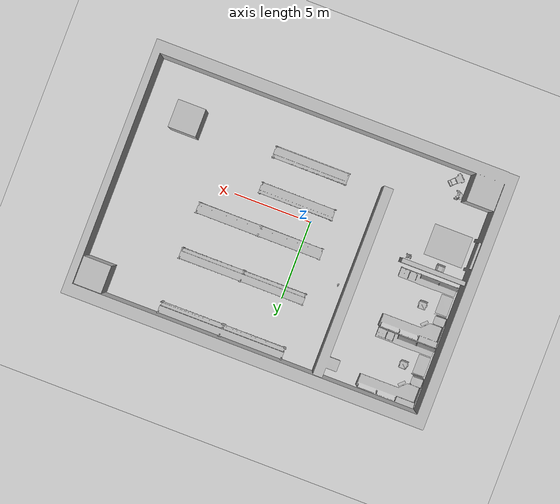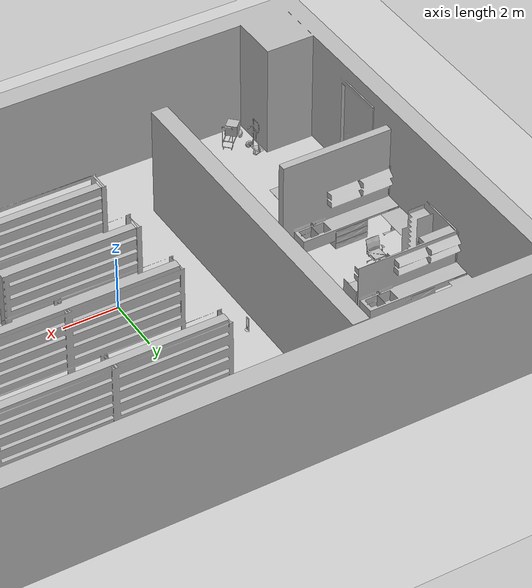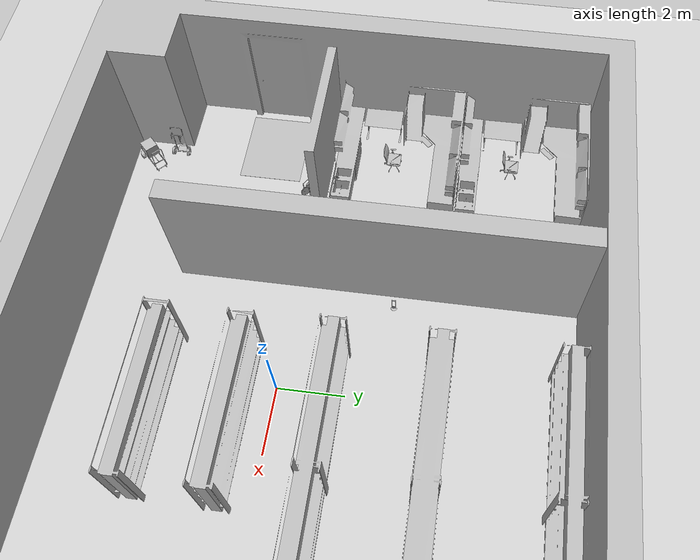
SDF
<?xml version="1.0"?>
<sdf version="1.4">
	<world name="cube_office">
		<include>
				<uri>model://sun</uri>
		</include>
	<light type="point" name="my_light">
		<pose>-1.5 -3 2 0 0 0</pose>
		<diffuse>.9 .9 .9 1</diffuse>
		<specular>.1 .1 .1 1</specular>
		<attenuation>
				<range>20</range>
				<constant>0.5</constant>
				<linear>0.05</linear>
		</attenuation>
		<cast_shadows>true</cast_shadows>
	</light>
   <model name='ground_plane_0'>
      <static>1</static>
      <link name='p_link'>
        <collision name='p_collision'>
          <geometry>
            <plane>
              <normal>0 0 1</normal>
              <size>100 100</size>
            </plane>
          </geometry>
          <surface>
            <friction>
              <ode>
                <mu>100</mu>
                <mu2>50</mu2>
              </ode>
            </friction>
            <bounce/>
            <contact>
              <ode/>
            </contact>
          </surface>
          <max_contacts>10</max_contacts>
        </collision>
        <visual name='p_visual'>
          <cast_shadows>0</cast_shadows>
          <geometry>
            <plane>
              <normal>0 0 1</normal>
              <size>100 100</size>
            </plane>
          </geometry>
          <material>
          </material>
        </visual>
        <velocity_decay>
          <linear>0</linear>
          <angular>0</angular>
        </velocity_decay>
        <self_collide>0</self_collide>
        <kinematic>0</kinematic>
        <gravity>1</gravity>
      </link>
      <pose>0.497681 0 0 0 -0 0</pose>
    </model>
	<physics type='ode'>
	 <max_step_size>0.01</max_step_size>
	 <real_time_factor>1</real_time_factor>
	 <real_time_update_rate>100</real_time_update_rate>
	 <gravity>0 0 -9.8</gravity>
	</physics>

		<model name="officeroom">
		<static>1</static>
		<pose>-10 -7 0 0 0 0 </pose>
		<link name="office">
		<collision name="office_collision">
		<geometry>
		<mesh><uri>model://OfficeRoom/officeRoomuntitled.stl</uri></mesh>
		</geometry>
          <max_contacts>10</max_contacts>
          <surface>
		   <bounce>
		   </bounce>
            <friction>
					<ode/>
            </friction>
            <contact>
					<ode/>
            </contact>
          </surface>
		</collision>
		<visual name="office_vision">
		<geometry>
		<mesh><uri>model://OfficeRoom/office.dae</uri></mesh>
		</geometry>
		</visual>
        <velocity_decay>
          <linear>0</linear>
          <angular>0</angular>
        </velocity_decay>
        <self_collide>0</self_collide>
        <kinematic>0</kinematic>
        <gravity>1</gravity>
		</link>
		</model>

		<model name="power_station">
		<static>1</static>
		<pose>-3 3 0 0 0 0 </pose>
		<link name="power_station">
		<collision name="station_collision">
		<geometry>
		<mesh><uri>model://station.stl</uri></mesh>
		</geometry>
  <max_contacts>10</max_contacts>
  <surface>
		<bounce>
		</bounce>
  <friction>
		<ode/>
  </friction>
  <contact>
		<ode/>
  </contact>
  </surface>
		</collision>
		<visual name="station_visual">
		<geometry>
		<mesh><uri>model://station.dae</uri></mesh>
		</geometry>
		</visual>
  <velocity_decay>
  <linear>0</linear>
  <angular>0</angular>
  </velocity_decay>
  <self_collide>0</self_collide>
  <kinematic>0</kinematic>
  <gravity>1</gravity>
		</link>
		</model>
	</world>
</sdf>
